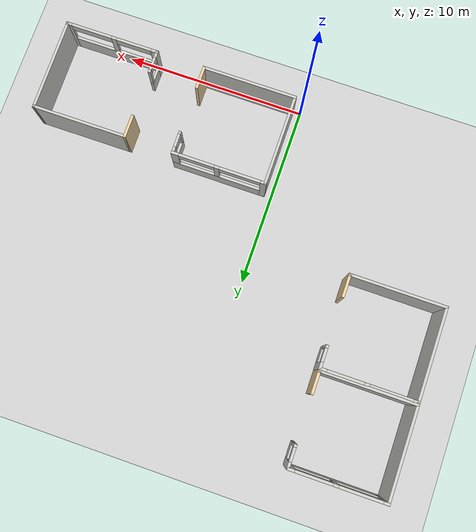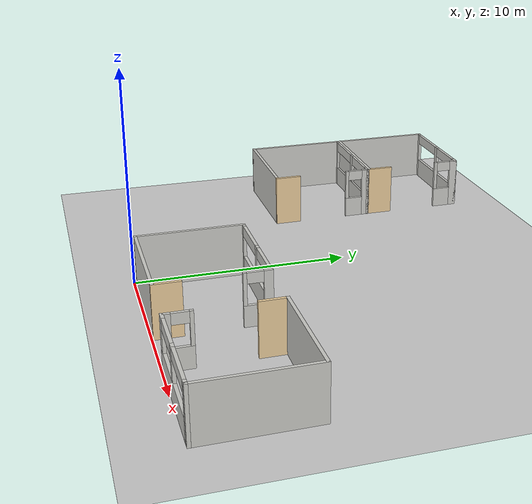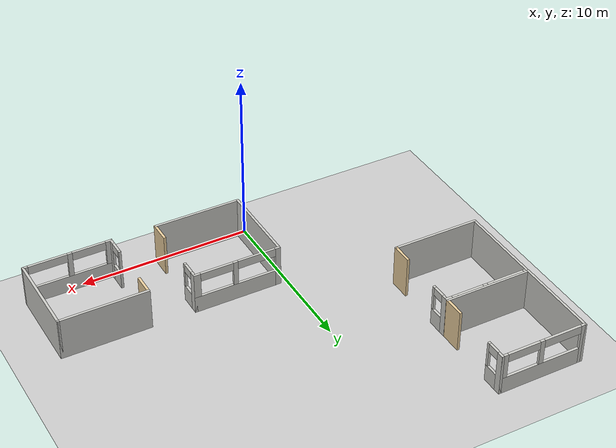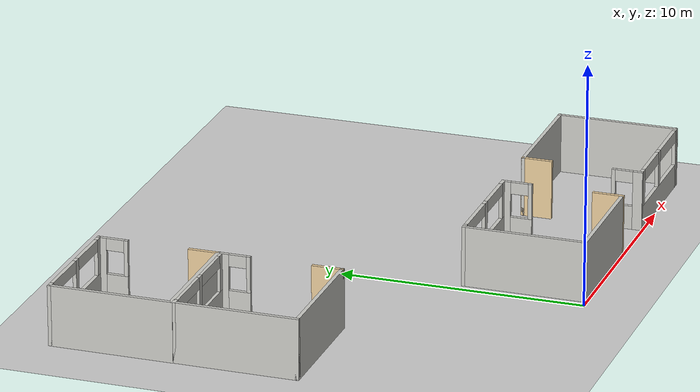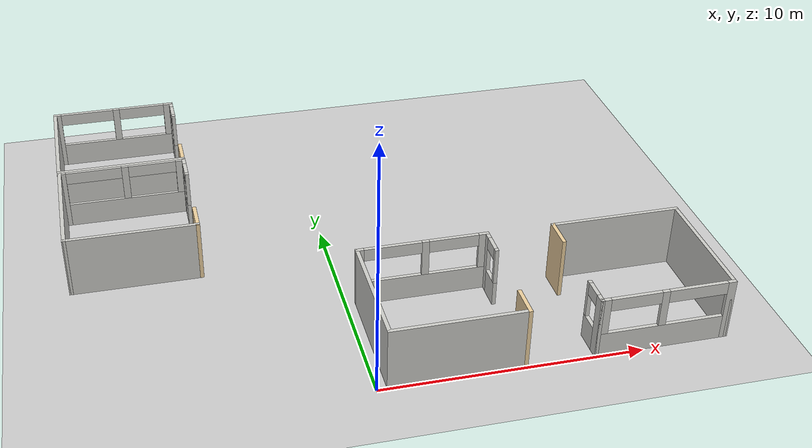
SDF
<sdf version="1.6">
 <world name="default">
  <model name="ground_plane">
   <static>1</static>
   <link name="link">
    <collision name="collision">
     <geometry><plane><normal>0 0 1</normal><size>100 100</size></plane></geometry>
     <surface>
      <contact><collide_bitmask>65535</collide_bitmask></contact>
      <friction><ode><mu>100</mu><mu2>50</mu2></ode></friction>
     </surface>
    </collision>
    <visual name="visual">
     <cast_shadows>0</cast_shadows>
     <geometry><plane><normal>0 0 1</normal><size>100 100</size></plane></geometry>
     <material>
      <script><uri>file://media/materials/scripts/gazebo.material</uri><name>Gazebo/Grey</name></script>
     </material>
    </visual>
   </link>
  </model>
  <model name="Bay_Area_clone_0">
   <pose>2.98527 2.59618 0 0 -0 0</pose>
   <link name="Wall_10">
    <collision name="Wall_10_Collision">
     <geometry><box><size>1.295 0.15 2.5</size></box></geometry>
     <pose>0 0 1.25 0 -0 0</pose>
    </collision>
    <visual name="Wall_10_Visual">
     <pose>0 0 1.25 0 -0 0</pose>
     <geometry><box><size>1.295 0.15 2.5</size></box></geometry>
     <material>
      <script><uri>file://media/materials/scripts/gazebo.material</uri><name>Gazebo/Grey</name></script>
      <ambient>0.921569 0.807843 0.615686 1</ambient>
     </material>
     <meta><layer>0</layer></meta>
    </visual>
    <pose>2.54 -1.8975 0 0 -0 1.5708</pose>
   </link>
   <link name="Wall_13">
    <collision name="Wall_13_Collision">
     <geometry><box><size>5.23 0.15 2.5</size></box></geometry>
     <pose>0 0 1.25 0 -0 0</pose>
    </collision>
    <visual name="Wall_13_Visual">
     <pose>0 0 1.25 0 -0 0</pose>
     <geometry><box><size>5.23 0.15 2.5</size></box></geometry>
     <material>
      <script><uri>file://media/materials/scripts/gazebo.material</uri><name>Gazebo/CeilingTiled</name></script>
      <ambient>0.921569 0.807843 0.615686 1</ambient>
     </material>
     <meta><layer>0</layer></meta>
    </visual>
    <pose>0 -2.47 0 0 -0 0</pose>
   </link>
   <link name="Wall_15">
    <pose>0 2.47 0 0 -0 0</pose>
    <visual name="Wall_15_Visual_0">
     <pose>-2.452 0 1.25 0 -0 0</pose>
     <geometry><box><size>0.326 0.15 2.5</size></box></geometry>
     <material>
      <script><uri>file://media/materials/scripts/gazebo.material</uri><name>Gazebo/CeilingTiled</name></script>
      <ambient>0.921569 0.807843 0.615686 1</ambient>
     </material>
     <meta><layer>0</layer></meta>
    </visual>
    <collision name="Wall_15_Collision_0">
     <geometry><box><size>0.326 0.15 2.5</size></box></geometry>
     <pose>-2.452 0 1.25 0 -0 0</pose>
    </collision>
    <visual name="Wall_15_Visual_1">
     <pose>0.163 0 0.5 0 -0 0</pose>
     <geometry><box><size>4.904 0.15 1</size></box></geometry>
     <material>
      <script><uri>file://media/materials/scripts/gazebo.material</uri><name>Gazebo/CeilingTiled</name></script>
      <ambient>0.921569 0.807843 0.615686 1</ambient>
     </material>
     <meta><layer>0</layer></meta>
    </visual>
    <collision name="Wall_15_Collision_1">
     <geometry><box><size>4.904 0.15 1</size></box></geometry>
     <pose>0.163 0 0.5 0 -0 0</pose>
    </collision>
    <visual name="Wall_15_Visual_2">
     <pose>0.111 0 1.75 0 -0 0</pose>
     <geometry><box><size>0.28 0.15 1.5</size></box></geometry>
     <material>
      <script><uri>file://media/materials/scripts/gazebo.material</uri><name>Gazebo/CeilingTiled</name></script>
      <ambient>0.921569 0.807843 0.615686 1</ambient>
     </material>
     <meta><layer>0</layer></meta>
    </visual>
    <collision name="Wall_15_Collision_2">
     <geometry><box><size>0.28 0.15 1.5</size></box></geometry>
     <pose>0.111 0 1.75 0 -0 0</pose>
    </collision>
    <visual name="Wall_15_Visual_3">
     <pose>2.408 0 1.75 0 -0 0</pose>
     <geometry><box><size>0.414 0.15 1.5</size></box></geometry>
     <material>
      <script><uri>file://media/materials/scripts/gazebo.material</uri><name>Gazebo/CeilingTiled</name></script>
      <ambient>0.921569 0.807843 0.615686 1</ambient>
     </material>
     <meta><layer>0</layer></meta>
    </visual>
    <collision name="Wall_15_Collision_3">
     <geometry><box><size>0.414 0.15 1.5</size></box></geometry>
     <pose>2.408 0 1.75 0 -0 0</pose>
    </collision>
    <visual name="Wall_15_Visual_4">
     <pose>-1.159 0 2.25 0 -0 0</pose>
     <geometry><box><size>2.26 0.15 0.5</size></box></geometry>
     <material>
      <script><uri>file://media/materials/scripts/gazebo.material</uri><name>Gazebo/CeilingTiled</name></script>
      <ambient>0.921569 0.807843 0.615686 1</ambient>
     </material>
     <meta><layer>0</layer></meta>
    </visual>
    <collision name="Wall_15_Collision_4">
     <geometry><box><size>2.26 0.15 0.5</size></box></geometry>
     <pose>-1.159 0 2.25 0 -0 0</pose>
    </collision>
    <visual name="Wall_15_Visual_5">
     <pose>1.226 0 2.25 0 -0 0</pose>
     <geometry><box><size>1.95 0.15 0.5</size></box></geometry>
     <material>
      <script><uri>file://media/materials/scripts/gazebo.material</uri><name>Gazebo/CeilingTiled</name></script>
      <ambient>0.921569 0.807843 0.615686 1</ambient>
     </material>
     <meta><layer>0</layer></meta>
    </visual>
    <collision name="Wall_15_Collision_5">
     <geometry><box><size>1.95 0.15 0.5</size></box></geometry>
     <pose>1.226 0 2.25 0 -0 0</pose>
    </collision>
   </link>
   <link name="Wall_17">
    <pose>2.54 1.8975 0 0 -0 -1.5708</pose>
    <visual name="Wall_17_Visual_0">
     <pose>-0.445 0 1.25 0 -0 0</pose>
     <geometry><box><size>0.405 0.15 2.5</size></box></geometry>
     <material>
      <script><uri>file://media/materials/scripts/gazebo.material</uri><name>Gazebo/CeilingTiled</name></script>
      <ambient>0.921569 0.807843 0.615686 1</ambient>
     </material>
     <meta><layer>0</layer></meta>
    </visual>
    <collision name="Wall_17_Collision_0">
     <geometry><box><size>0.405 0.15 2.5</size></box></geometry>
     <pose>-0.445 0 1.25 0 -0 0</pose>
    </collision>
    <visual name="Wall_17_Visual_1">
     <pose>0.2025 0 0.5 0 -0 0</pose>
     <geometry><box><size>0.89 0.15 1</size></box></geometry>
     <material>
      <script><uri>file://media/materials/scripts/gazebo.material</uri><name>Gazebo/CeilingTiled</name></script>
      <ambient>0.921569 0.807843 0.615686 1</ambient>
     </material>
     <meta><layer>0</layer></meta>
    </visual>
    <collision name="Wall_17_Collision_1">
     <geometry><box><size>0.89 0.15 1</size></box></geometry>
     <pose>0.2025 0 0.5 0 -0 0</pose>
    </collision>
    <visual name="Wall_17_Visual_2">
     <pose>0.5675 0 1.75 0 -0 0</pose>
     <geometry><box><size>0.16 0.15 1.5</size></box></geometry>
     <material>
      <script><uri>file://media/materials/scripts/gazebo.material</uri><name>Gazebo/CeilingTiled</name></script>
      <ambient>0.921569 0.807843 0.615686 1</ambient>
     </material>
     <meta><layer>0</layer></meta>
    </visual>
    <collision name="Wall_17_Collision_2">
     <geometry><box><size>0.16 0.15 1.5</size></box></geometry>
     <pose>0.5675 0 1.75 0 -0 0</pose>
    </collision>
    <visual name="Wall_17_Visual_3">
     <pose>0.1225 0 2.25 0 -0 0</pose>
     <geometry><box><size>0.73 0.15 0.5</size></box></geometry>
     <material>
      <script><uri>file://media/materials/scripts/gazebo.material</uri><name>Gazebo/CeilingTiled</name></script>
      <ambient>0.921569 0.807843 0.615686 1</ambient>
     </material>
     <meta><layer>0</layer></meta>
    </visual>
    <collision name="Wall_17_Collision_3">
     <geometry><box><size>0.73 0.15 0.5</size></box></geometry>
     <pose>0.1225 0 2.25 0 -0 0</pose>
    </collision>
   </link>
   <link name="Wall_8">
    <collision name="Wall_8_Collision">
     <geometry><box><size>5.09 0.15 2.5</size></box></geometry>
     <pose>0 0 1.25 0 -0 0</pose>
    </collision>
    <visual name="Wall_8_Visual">
     <pose>0 0 1.25 0 -0 0</pose>
     <geometry><box><size>5.09 0.15 2.5</size></box></geometry>
     <material>
      <script><uri>file://media/materials/scripts/gazebo.material</uri><name>Gazebo/CeilingTiled</name></script>
      <ambient>0.921569 0.807843 0.615686 1</ambient>
     </material>
     <meta><layer>0</layer></meta>
    </visual>
    <pose>-2.54 0 0 0 -0 -1.5708</pose>
   </link>
   <static>1</static>
  </model>
  <model name="Bay_Area_clone_1_clone_0">
   <pose>10.7213 2.58453 0 0 0 -3.13932</pose>
   <link name="Wall_10">
    <collision name="Wall_10_Collision">
     <geometry><box><size>1.295 0.15 2.5</size></box></geometry>
     <pose>0 0 1.25 0 -0 0</pose>
    </collision>
    <visual name="Wall_10_Visual">
     <pose>0 0 1.25 0 -0 0</pose>
     <geometry><box><size>1.295 0.15 2.5</size></box></geometry>
     <material>
      <script><uri>file://media/materials/scripts/gazebo.material</uri><name>Gazebo/Grey</name></script>
      <ambient>0.921569 0.807843 0.615686 1</ambient>
     </material>
     <meta><layer>0</layer></meta>
    </visual>
    <pose>2.54 -1.8975 0 0 -0 1.5708</pose>
   </link>
   <link name="Wall_13">
    <collision name="Wall_13_Collision">
     <geometry><box><size>5.23 0.15 2.5</size></box></geometry>
     <pose>0 0 1.25 0 -0 0</pose>
    </collision>
    <visual name="Wall_13_Visual">
     <pose>0 0 1.25 0 -0 0</pose>
     <geometry><box><size>5.23 0.15 2.5</size></box></geometry>
     <material>
      <script><uri>file://media/materials/scripts/gazebo.material</uri><name>Gazebo/CeilingTiled</name></script>
      <ambient>0.921569 0.807843 0.615686 1</ambient>
     </material>
     <meta><layer>0</layer></meta>
    </visual>
    <pose>0 -2.47 0 0 -0 0</pose>
   </link>
   <link name="Wall_15">
    <pose>0 2.47 0 0 -0 0</pose>
    <visual name="Wall_15_Visual_0">
     <pose>-2.452 0 1.25 0 -0 0</pose>
     <geometry><box><size>0.326 0.15 2.5</size></box></geometry>
     <material>
      <script><uri>file://media/materials/scripts/gazebo.material</uri><name>Gazebo/CeilingTiled</name></script>
      <ambient>0.921569 0.807843 0.615686 1</ambient>
     </material>
     <meta><layer>0</layer></meta>
    </visual>
    <collision name="Wall_15_Collision_0">
     <geometry><box><size>0.326 0.15 2.5</size></box></geometry>
     <pose>-2.452 0 1.25 0 -0 0</pose>
    </collision>
    <visual name="Wall_15_Visual_1">
     <pose>0.163 0 0.5 0 -0 0</pose>
     <geometry><box><size>4.904 0.15 1</size></box></geometry>
     <material>
      <script><uri>file://media/materials/scripts/gazebo.material</uri><name>Gazebo/CeilingTiled</name></script>
      <ambient>0.921569 0.807843 0.615686 1</ambient>
     </material>
     <meta><layer>0</layer></meta>
    </visual>
    <collision name="Wall_15_Collision_1">
     <geometry><box><size>4.904 0.15 1</size></box></geometry>
     <pose>0.163 0 0.5 0 -0 0</pose>
    </collision>
    <visual name="Wall_15_Visual_2">
     <pose>0.111 0 1.75 0 -0 0</pose>
     <geometry><box><size>0.28 0.15 1.5</size></box></geometry>
     <material>
      <script><uri>file://media/materials/scripts/gazebo.material</uri><name>Gazebo/CeilingTiled</name></script>
      <ambient>0.921569 0.807843 0.615686 1</ambient>
     </material>
     <meta><layer>0</layer></meta>
    </visual>
    <collision name="Wall_15_Collision_2">
     <geometry><box><size>0.28 0.15 1.5</size></box></geometry>
     <pose>0.111 0 1.75 0 -0 0</pose>
    </collision>
    <visual name="Wall_15_Visual_3">
     <pose>2.408 0 1.75 0 -0 0</pose>
     <geometry><box><size>0.414 0.15 1.5</size></box></geometry>
     <material>
      <script><uri>file://media/materials/scripts/gazebo.material</uri><name>Gazebo/CeilingTiled</name></script>
      <ambient>0.921569 0.807843 0.615686 1</ambient>
     </material>
     <meta><layer>0</layer></meta>
    </visual>
    <collision name="Wall_15_Collision_3">
     <geometry><box><size>0.414 0.15 1.5</size></box></geometry>
     <pose>2.408 0 1.75 0 -0 0</pose>
    </collision>
    <visual name="Wall_15_Visual_4">
     <pose>-1.159 0 2.25 0 -0 0</pose>
     <geometry><box><size>2.26 0.15 0.5</size></box></geometry>
     <material>
      <script><uri>file://media/materials/scripts/gazebo.material</uri><name>Gazebo/CeilingTiled</name></script>
      <ambient>0.921569 0.807843 0.615686 1</ambient>
     </material>
     <meta><layer>0</layer></meta>
    </visual>
    <collision name="Wall_15_Collision_4">
     <geometry><box><size>2.26 0.15 0.5</size></box></geometry>
     <pose>-1.159 0 2.25 0 -0 0</pose>
    </collision>
    <visual name="Wall_15_Visual_5">
     <pose>1.226 0 2.25 0 -0 0</pose>
     <geometry><box><size>1.95 0.15 0.5</size></box></geometry>
     <material>
      <script><uri>file://media/materials/scripts/gazebo.material</uri><name>Gazebo/CeilingTiled</name></script>
      <ambient>0.921569 0.807843 0.615686 1</ambient>
     </material>
     <meta><layer>0</layer></meta>
    </visual>
    <collision name="Wall_15_Collision_5">
     <geometry><box><size>1.95 0.15 0.5</size></box></geometry>
     <pose>1.226 0 2.25 0 -0 0</pose>
    </collision>
   </link>
   <link name="Wall_17">
    <pose>2.54 1.8975 0 0 -0 -1.5708</pose>
    <visual name="Wall_17_Visual_0">
     <pose>-0.445 0 1.25 0 -0 0</pose>
     <geometry><box><size>0.405 0.15 2.5</size></box></geometry>
     <material>
      <script><uri>file://media/materials/scripts/gazebo.material</uri><name>Gazebo/CeilingTiled</name></script>
      <ambient>0.921569 0.807843 0.615686 1</ambient>
     </material>
     <meta><layer>0</layer></meta>
    </visual>
    <collision name="Wall_17_Collision_0">
     <geometry><box><size>0.405 0.15 2.5</size></box></geometry>
     <pose>-0.445 0 1.25 0 -0 0</pose>
    </collision>
    <visual name="Wall_17_Visual_1">
     <pose>0.2025 0 0.5 0 -0 0</pose>
     <geometry><box><size>0.89 0.15 1</size></box></geometry>
     <material>
      <script><uri>file://media/materials/scripts/gazebo.material</uri><name>Gazebo/CeilingTiled</name></script>
      <ambient>0.921569 0.807843 0.615686 1</ambient>
     </material>
     <meta><layer>0</layer></meta>
    </visual>
    <collision name="Wall_17_Collision_1">
     <geometry><box><size>0.89 0.15 1</size></box></geometry>
     <pose>0.2025 0 0.5 0 -0 0</pose>
    </collision>
    <visual name="Wall_17_Visual_2">
     <pose>0.5675 0 1.75 0 -0 0</pose>
     <geometry><box><size>0.16 0.15 1.5</size></box></geometry>
     <material>
      <script><uri>file://media/materials/scripts/gazebo.material</uri><name>Gazebo/CeilingTiled</name></script>
      <ambient>0.921569 0.807843 0.615686 1</ambient>
     </material>
     <meta><layer>0</layer></meta>
    </visual>
    <collision name="Wall_17_Collision_2">
     <geometry><box><size>0.16 0.15 1.5</size></box></geometry>
     <pose>0.5675 0 1.75 0 -0 0</pose>
    </collision>
    <visual name="Wall_17_Visual_3">
     <pose>0.1225 0 2.25 0 -0 0</pose>
     <geometry><box><size>0.73 0.15 0.5</size></box></geometry>
     <material>
      <script><uri>file://media/materials/scripts/gazebo.material</uri><name>Gazebo/CeilingTiled</name></script>
      <ambient>0.921569 0.807843 0.615686 1</ambient>
     </material>
     <meta><layer>0</layer></meta>
    </visual>
    <collision name="Wall_17_Collision_3">
     <geometry><box><size>0.73 0.15 0.5</size></box></geometry>
     <pose>0.1225 0 2.25 0 -0 0</pose>
    </collision>
   </link>
   <link name="Wall_8">
    <collision name="Wall_8_Collision">
     <geometry><box><size>5.09 0.15 2.5</size></box></geometry>
     <pose>0 0 1.25 0 -0 0</pose>
    </collision>
    <visual name="Wall_8_Visual">
     <pose>0 0 1.25 0 -0 0</pose>
     <geometry><box><size>5.09 0.15 2.5</size></box></geometry>
     <material>
      <script><uri>file://media/materials/scripts/gazebo.material</uri><name>Gazebo/CeilingTiled</name></script>
      <ambient>0.921569 0.807843 0.615686 1</ambient>
     </material>
     <meta><layer>0</layer></meta>
    </visual>
    <pose>-2.54 0 0 0 -0 -1.5708</pose>
   </link>
   <static>1</static>
  </model>
  <model name="Bay_Area_0">
   <pose>-7.66898 10.6403 0 0 -0 0</pose>
   <link name="Wall_10">
    <collision name="Wall_10_Collision">
     <geometry><box><size>1.295 0.15 2.5</size></box></geometry>
     <pose>0 0 1.25 0 -0 0</pose>
    </collision>
    <visual name="Wall_10_Visual">
     <pose>0 0 1.25 0 -0 0</pose>
     <geometry><box><size>1.295 0.15 2.5</size></box></geometry>
     <material>
      <script><uri>file://media/materials/scripts/gazebo.material</uri><name>Gazebo/Grey</name></script>
      <ambient>0.921569 0.807843 0.615686 1</ambient>
     </material>
     <meta><layer>0</layer></meta>
    </visual>
    <pose>2.54 -1.8975 0 0 -0 1.5708</pose>
   </link>
   <link name="Wall_13">
    <collision name="Wall_13_Collision">
     <geometry><box><size>5.23 0.15 2.5</size></box></geometry>
     <pose>0 0 1.25 0 -0 0</pose>
    </collision>
    <visual name="Wall_13_Visual">
     <pose>0 0 1.25 0 -0 0</pose>
     <geometry><box><size>5.23 0.15 2.5</size></box></geometry>
     <material>
      <script><uri>file://media/materials/scripts/gazebo.material</uri><name>Gazebo/CeilingTiled</name></script>
      <ambient>0.921569 0.807843 0.615686 1</ambient>
     </material>
     <meta><layer>0</layer></meta>
    </visual>
    <pose>0 -2.47 0 0 -0 0</pose>
   </link>
   <link name="Wall_15">
    <pose>0 2.47 0 0 -0 0</pose>
    <visual name="Wall_15_Visual_0">
     <pose>-2.452 0 1.25 0 -0 0</pose>
     <geometry><box><size>0.326 0.15 2.5</size></box></geometry>
     <material>
      <script><uri>file://media/materials/scripts/gazebo.material</uri><name>Gazebo/CeilingTiled</name></script>
      <ambient>0.921569 0.807843 0.615686 1</ambient>
     </material>
     <meta><layer>0</layer></meta>
    </visual>
    <collision name="Wall_15_Collision_0">
     <geometry><box><size>0.326 0.15 2.5</size></box></geometry>
     <pose>-2.452 0 1.25 0 -0 0</pose>
    </collision>
    <visual name="Wall_15_Visual_1">
     <pose>0.163 0 0.5 0 -0 0</pose>
     <geometry><box><size>4.904 0.15 1</size></box></geometry>
     <material>
      <script><uri>file://media/materials/scripts/gazebo.material</uri><name>Gazebo/CeilingTiled</name></script>
      <ambient>0.921569 0.807843 0.615686 1</ambient>
     </material>
     <meta><layer>0</layer></meta>
    </visual>
    <collision name="Wall_15_Collision_1">
     <geometry><box><size>4.904 0.15 1</size></box></geometry>
     <pose>0.163 0 0.5 0 -0 0</pose>
    </collision>
    <visual name="Wall_15_Visual_2">
     <pose>0.111 0 1.75 0 -0 0</pose>
     <geometry><box><size>0.28 0.15 1.5</size></box></geometry>
     <material>
      <script><uri>file://media/materials/scripts/gazebo.material</uri><name>Gazebo/CeilingTiled</name></script>
      <ambient>0.921569 0.807843 0.615686 1</ambient>
     </material>
     <meta><layer>0</layer></meta>
    </visual>
    <collision name="Wall_15_Collision_2">
     <geometry><box><size>0.28 0.15 1.5</size></box></geometry>
     <pose>0.111 0 1.75 0 -0 0</pose>
    </collision>
    <visual name="Wall_15_Visual_3">
     <pose>2.408 0 1.75 0 -0 0</pose>
     <geometry><box><size>0.414 0.15 1.5</size></box></geometry>
     <material>
      <script><uri>file://media/materials/scripts/gazebo.material</uri><name>Gazebo/CeilingTiled</name></script>
      <ambient>0.921569 0.807843 0.615686 1</ambient>
     </material>
     <meta><layer>0</layer></meta>
    </visual>
    <collision name="Wall_15_Collision_3">
     <geometry><box><size>0.414 0.15 1.5</size></box></geometry>
     <pose>2.408 0 1.75 0 -0 0</pose>
    </collision>
    <visual name="Wall_15_Visual_4">
     <pose>-1.159 0 2.25 0 -0 0</pose>
     <geometry><box><size>2.26 0.15 0.5</size></box></geometry>
     <material>
      <script><uri>file://media/materials/scripts/gazebo.material</uri><name>Gazebo/CeilingTiled</name></script>
      <ambient>0.921569 0.807843 0.615686 1</ambient>
     </material>
     <meta><layer>0</layer></meta>
    </visual>
    <collision name="Wall_15_Collision_4">
     <geometry><box><size>2.26 0.15 0.5</size></box></geometry>
     <pose>-1.159 0 2.25 0 -0 0</pose>
    </collision>
    <visual name="Wall_15_Visual_5">
     <pose>1.226 0 2.25 0 -0 0</pose>
     <geometry><box><size>1.95 0.15 0.5</size></box></geometry>
     <material>
      <script><uri>file://media/materials/scripts/gazebo.material</uri><name>Gazebo/CeilingTiled</name></script>
      <ambient>0.921569 0.807843 0.615686 1</ambient>
     </material>
     <meta><layer>0</layer></meta>
    </visual>
    <collision name="Wall_15_Collision_5">
     <geometry><box><size>1.95 0.15 0.5</size></box></geometry>
     <pose>1.226 0 2.25 0 -0 0</pose>
    </collision>
   </link>
   <link name="Wall_17">
    <pose>2.54 1.8975 0 0 -0 -1.5708</pose>
    <visual name="Wall_17_Visual_0">
     <pose>-0.445 0 1.25 0 -0 0</pose>
     <geometry><box><size>0.405 0.15 2.5</size></box></geometry>
     <material>
      <script><uri>file://media/materials/scripts/gazebo.material</uri><name>Gazebo/CeilingTiled</name></script>
      <ambient>0.921569 0.807843 0.615686 1</ambient>
     </material>
     <meta><layer>0</layer></meta>
    </visual>
    <collision name="Wall_17_Collision_0">
     <geometry><box><size>0.405 0.15 2.5</size></box></geometry>
     <pose>-0.445 0 1.25 0 -0 0</pose>
    </collision>
    <visual name="Wall_17_Visual_1">
     <pose>0.2025 0 0.5 0 -0 0</pose>
     <geometry><box><size>0.89 0.15 1</size></box></geometry>
     <material>
      <script><uri>file://media/materials/scripts/gazebo.material</uri><name>Gazebo/CeilingTiled</name></script>
      <ambient>0.921569 0.807843 0.615686 1</ambient>
     </material>
     <meta><layer>0</layer></meta>
    </visual>
    <collision name="Wall_17_Collision_1">
     <geometry><box><size>0.89 0.15 1</size></box></geometry>
     <pose>0.2025 0 0.5 0 -0 0</pose>
    </collision>
    <visual name="Wall_17_Visual_2">
     <pose>0.5675 0 1.75 0 -0 0</pose>
     <geometry><box><size>0.16 0.15 1.5</size></box></geometry>
     <material>
      <script><uri>file://media/materials/scripts/gazebo.material</uri><name>Gazebo/CeilingTiled</name></script>
      <ambient>0.921569 0.807843 0.615686 1</ambient>
     </material>
     <meta><layer>0</layer></meta>
    </visual>
    <collision name="Wall_17_Collision_2">
     <geometry><box><size>0.16 0.15 1.5</size></box></geometry>
     <pose>0.5675 0 1.75 0 -0 0</pose>
    </collision>
    <visual name="Wall_17_Visual_3">
     <pose>0.1225 0 2.25 0 -0 0</pose>
     <geometry><box><size>0.73 0.15 0.5</size></box></geometry>
     <material>
      <script><uri>file://media/materials/scripts/gazebo.material</uri><name>Gazebo/CeilingTiled</name></script>
      <ambient>0.921569 0.807843 0.615686 1</ambient>
     </material>
     <meta><layer>0</layer></meta>
    </visual>
    <collision name="Wall_17_Collision_3">
     <geometry><box><size>0.73 0.15 0.5</size></box></geometry>
     <pose>0.1225 0 2.25 0 -0 0</pose>
    </collision>
   </link>
   <link name="Wall_8">
    <collision name="Wall_8_Collision">
     <geometry><box><size>5.09 0.15 2.5</size></box></geometry>
     <pose>0 0 1.25 0 -0 0</pose>
    </collision>
    <visual name="Wall_8_Visual">
     <pose>0 0 1.25 0 -0 0</pose>
     <geometry><box><size>5.09 0.15 2.5</size></box></geometry>
     <material>
      <script><uri>file://media/materials/scripts/gazebo.material</uri><name>Gazebo/CeilingTiled</name></script>
      <ambient>0.921569 0.807843 0.615686 1</ambient>
     </material>
     <meta><layer>0</layer></meta>
    </visual>
    <pose>-2.54 0 0 0 -0 -1.5708</pose>
   </link>
   <static>1</static>
  </model>
  <model name="Bay_Area_1">
   <pose>-7.68156 15.7016 0 0 -0 0</pose>
   <link name="Wall_10">
    <collision name="Wall_10_Collision">
     <geometry><box><size>1.295 0.15 2.5</size></box></geometry>
     <pose>0 0 1.25 0 -0 0</pose>
    </collision>
    <visual name="Wall_10_Visual">
     <pose>0 0 1.25 0 -0 0</pose>
     <geometry><box><size>1.295 0.15 2.5</size></box></geometry>
     <material>
      <script><uri>file://media/materials/scripts/gazebo.material</uri><name>Gazebo/Grey</name></script>
      <ambient>0.921569 0.807843 0.615686 1</ambient>
     </material>
     <meta><layer>0</layer></meta>
    </visual>
    <pose>2.54 -1.8975 0 0 -0 1.5708</pose>
   </link>
   <link name="Wall_13">
    <collision name="Wall_13_Collision">
     <geometry><box><size>5.23 0.15 2.5</size></box></geometry>
     <pose>0 0 1.25 0 -0 0</pose>
    </collision>
    <visual name="Wall_13_Visual">
     <pose>0 0 1.25 0 -0 0</pose>
     <geometry><box><size>5.23 0.15 2.5</size></box></geometry>
     <material>
      <script><uri>file://media/materials/scripts/gazebo.material</uri><name>Gazebo/CeilingTiled</name></script>
      <ambient>0.921569 0.807843 0.615686 1</ambient>
     </material>
     <meta><layer>0</layer></meta>
    </visual>
    <pose>0 -2.47 0 0 -0 0</pose>
   </link>
   <link name="Wall_15">
    <pose>0 2.47 0 0 -0 0</pose>
    <visual name="Wall_15_Visual_0">
     <pose>-2.452 0 1.25 0 -0 0</pose>
     <geometry><box><size>0.326 0.15 2.5</size></box></geometry>
     <material>
      <script><uri>file://media/materials/scripts/gazebo.material</uri><name>Gazebo/CeilingTiled</name></script>
      <ambient>0.921569 0.807843 0.615686 1</ambient>
     </material>
     <meta><layer>0</layer></meta>
    </visual>
    <collision name="Wall_15_Collision_0">
     <geometry><box><size>0.326 0.15 2.5</size></box></geometry>
     <pose>-2.452 0 1.25 0 -0 0</pose>
    </collision>
    <visual name="Wall_15_Visual_1">
     <pose>0.163 0 0.5 0 -0 0</pose>
     <geometry><box><size>4.904 0.15 1</size></box></geometry>
     <material>
      <script><uri>file://media/materials/scripts/gazebo.material</uri><name>Gazebo/CeilingTiled</name></script>
      <ambient>0.921569 0.807843 0.615686 1</ambient>
     </material>
     <meta><layer>0</layer></meta>
    </visual>
    <collision name="Wall_15_Collision_1">
     <geometry><box><size>4.904 0.15 1</size></box></geometry>
     <pose>0.163 0 0.5 0 -0 0</pose>
    </collision>
    <visual name="Wall_15_Visual_2">
     <pose>0.111 0 1.75 0 -0 0</pose>
     <geometry><box><size>0.28 0.15 1.5</size></box></geometry>
     <material>
      <script><uri>file://media/materials/scripts/gazebo.material</uri><name>Gazebo/CeilingTiled</name></script>
      <ambient>0.921569 0.807843 0.615686 1</ambient>
     </material>
     <meta><layer>0</layer></meta>
    </visual>
    <collision name="Wall_15_Collision_2">
     <geometry><box><size>0.28 0.15 1.5</size></box></geometry>
     <pose>0.111 0 1.75 0 -0 0</pose>
    </collision>
    <visual name="Wall_15_Visual_3">
     <pose>2.408 0 1.75 0 -0 0</pose>
     <geometry><box><size>0.414 0.15 1.5</size></box></geometry>
     <material>
      <script><uri>file://media/materials/scripts/gazebo.material</uri><name>Gazebo/CeilingTiled</name></script>
      <ambient>0.921569 0.807843 0.615686 1</ambient>
     </material>
     <meta><layer>0</layer></meta>
    </visual>
    <collision name="Wall_15_Collision_3">
     <geometry><box><size>0.414 0.15 1.5</size></box></geometry>
     <pose>2.408 0 1.75 0 -0 0</pose>
    </collision>
    <visual name="Wall_15_Visual_4">
     <pose>-1.159 0 2.25 0 -0 0</pose>
     <geometry><box><size>2.26 0.15 0.5</size></box></geometry>
     <material>
      <script><uri>file://media/materials/scripts/gazebo.material</uri><name>Gazebo/CeilingTiled</name></script>
      <ambient>0.921569 0.807843 0.615686 1</ambient>
     </material>
     <meta><layer>0</layer></meta>
    </visual>
    <collision name="Wall_15_Collision_4">
     <geometry><box><size>2.26 0.15 0.5</size></box></geometry>
     <pose>-1.159 0 2.25 0 -0 0</pose>
    </collision>
    <visual name="Wall_15_Visual_5">
     <pose>1.226 0 2.25 0 -0 0</pose>
     <geometry><box><size>1.95 0.15 0.5</size></box></geometry>
     <material>
      <script><uri>file://media/materials/scripts/gazebo.material</uri><name>Gazebo/CeilingTiled</name></script>
      <ambient>0.921569 0.807843 0.615686 1</ambient>
     </material>
     <meta><layer>0</layer></meta>
    </visual>
    <collision name="Wall_15_Collision_5">
     <geometry><box><size>1.95 0.15 0.5</size></box></geometry>
     <pose>1.226 0 2.25 0 -0 0</pose>
    </collision>
   </link>
   <link name="Wall_17">
    <pose>2.54 1.8975 0 0 -0 -1.5708</pose>
    <visual name="Wall_17_Visual_0">
     <pose>-0.445 0 1.25 0 -0 0</pose>
     <geometry><box><size>0.405 0.15 2.5</size></box></geometry>
     <material>
      <script><uri>file://media/materials/scripts/gazebo.material</uri><name>Gazebo/CeilingTiled</name></script>
      <ambient>0.921569 0.807843 0.615686 1</ambient>
     </material>
     <meta><layer>0</layer></meta>
    </visual>
    <collision name="Wall_17_Collision_0">
     <geometry><box><size>0.405 0.15 2.5</size></box></geometry>
     <pose>-0.445 0 1.25 0 -0 0</pose>
    </collision>
    <visual name="Wall_17_Visual_1">
     <pose>0.2025 0 0.5 0 -0 0</pose>
     <geometry><box><size>0.89 0.15 1</size></box></geometry>
     <material>
      <script><uri>file://media/materials/scripts/gazebo.material</uri><name>Gazebo/CeilingTiled</name></script>
      <ambient>0.921569 0.807843 0.615686 1</ambient>
     </material>
     <meta><layer>0</layer></meta>
    </visual>
    <collision name="Wall_17_Collision_1">
     <geometry><box><size>0.89 0.15 1</size></box></geometry>
     <pose>0.2025 0 0.5 0 -0 0</pose>
    </collision>
    <visual name="Wall_17_Visual_2">
     <pose>0.5675 0 1.75 0 -0 0</pose>
     <geometry><box><size>0.16 0.15 1.5</size></box></geometry>
     <material>
      <script><uri>file://media/materials/scripts/gazebo.material</uri><name>Gazebo/CeilingTiled</name></script>
      <ambient>0.921569 0.807843 0.615686 1</ambient>
     </material>
     <meta><layer>0</layer></meta>
    </visual>
    <collision name="Wall_17_Collision_2">
     <geometry><box><size>0.16 0.15 1.5</size></box></geometry>
     <pose>0.5675 0 1.75 0 -0 0</pose>
    </collision>
    <visual name="Wall_17_Visual_3">
     <pose>0.1225 0 2.25 0 -0 0</pose>
     <geometry><box><size>0.73 0.15 0.5</size></box></geometry>
     <material>
      <script><uri>file://media/materials/scripts/gazebo.material</uri><name>Gazebo/CeilingTiled</name></script>
      <ambient>0.921569 0.807843 0.615686 1</ambient>
     </material>
     <meta><layer>0</layer></meta>
    </visual>
    <collision name="Wall_17_Collision_3">
     <geometry><box><size>0.73 0.15 0.5</size></box></geometry>
     <pose>0.1225 0 2.25 0 -0 0</pose>
    </collision>
   </link>
   <link name="Wall_8">
    <collision name="Wall_8_Collision">
     <geometry><box><size>5.09 0.15 2.5</size></box></geometry>
     <pose>0 0 1.25 0 -0 0</pose>
    </collision>
    <visual name="Wall_8_Visual">
     <pose>0 0 1.25 0 -0 0</pose>
     <geometry><box><size>5.09 0.15 2.5</size></box></geometry>
     <material>
      <script><uri>file://media/materials/scripts/gazebo.material</uri><name>Gazebo/CeilingTiled</name></script>
      <ambient>0.921569 0.807843 0.615686 1</ambient>
     </material>
     <meta><layer>0</layer></meta>
    </visual>
    <pose>-2.54 0 0 0 -0 -1.5708</pose>
   </link>
   <static>1</static>
  </model>
 </world>
</sdf>
